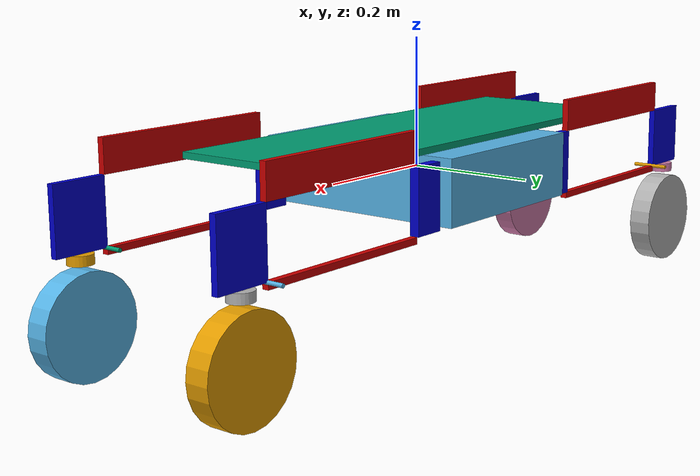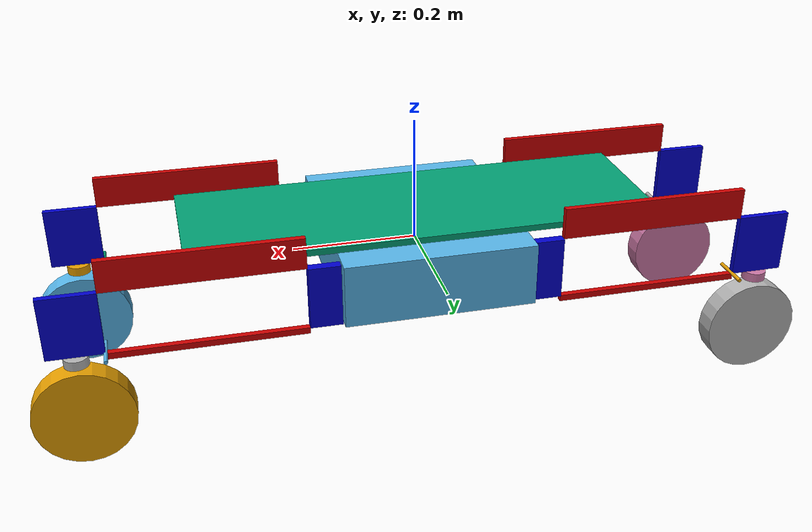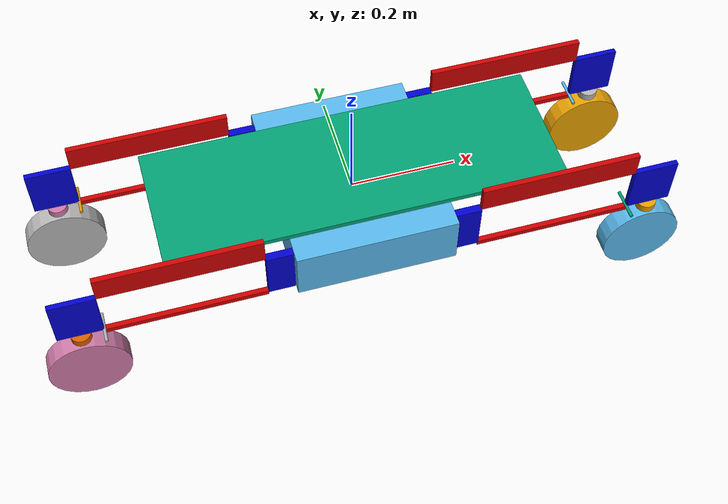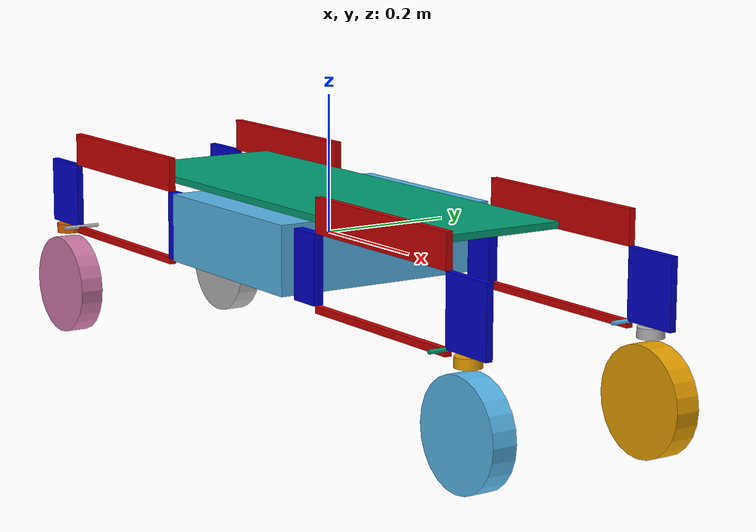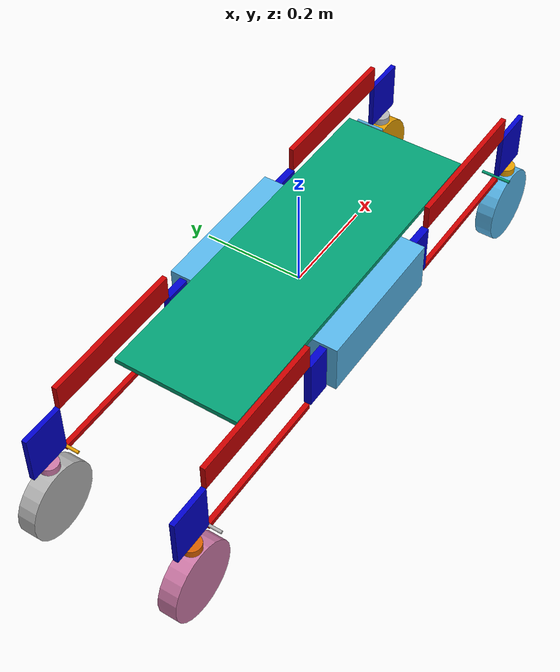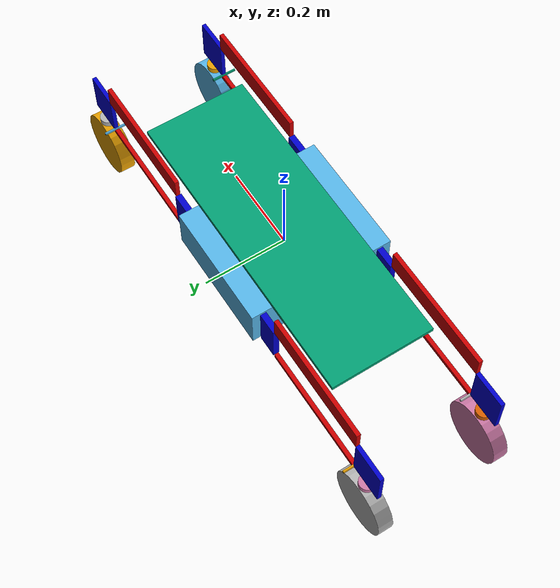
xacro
<?xml version="1.0"?>
<robot xmlns:xacro="http://www.ros.org/wiki/xacro" name="pandora">

	<!-- other files -->
	<xacro:include filename="$(find pandora_description)/materials.xacro" />
	<xacro:include filename="$(find pandora_description)/urdf/parameters.xacro" />
	<xacro:include filename="$(find pandora_description)/urdf/leg.xacro" />
	<xacro:include filename="$(find pandora_gazebo)/urdf/pandora.gazebo"/>
	<xacro:include filename="$(find pandora_gazebo)/urdf/plugins/contactWheels.gazebo"/>
	<xacro:include filename="$(find pandora_gazebo)/urdf/plugins/imu.gazebo"/>

	<!-- Used for fixing robot to Gazebo 'base_link' -->
  	<link name="dummy"/>

	<joint name="dummy__${base_link}" type="fixed">
		<origin xyz="0 0 0" rpy="0 0 0"/>
		<parent link="dummy"/>
		<child link="${base_link}"/>
	</joint>

	<!-- Base Link -->
	<link name="${base_link}">
		<visual>
			<origin xyz="0 0 0" rpy="0 0 0"/>
		  	<geometry>
				<box size="${base_link_x} ${base_link_y} ${base_link_z}"/>
		  	</geometry>
		</visual>

		<collision>
			<origin xyz="0 0 0" rpy="0 0 0"/>
			<geometry>
				<box size="${base_link_x} ${base_link_y} ${base_link_z}"/>
			</geometry>
		</collision>

		<inertial>
			<origin xyz="0 0 0" rpy="0 0 0"/>
			<mass value="${base_link_mass}"/>
			<inertia
				  ixx="${base_link_mass / 12.0 * (base_link_z*base_link_z + base_link_y*base_link_y)}" ixy="0.0" ixz="0.0"
				  iyy="${base_link_mass / 12.0 * (base_link_z*base_link_z + base_link_x*base_link_x)}" iyz="0.0"
				  izz="${base_link_mass / 12.0 * (base_link_y*base_link_y + base_link_x*base_link_x)}"/>
		</inertial>
	</link>

	<joint name="fixed" type="fixed">
		<origin xyz="0 0 0" rpy="0 0 0"/>
		<parent link="${base_link}"/>
		<child link="${base}"/>
	</joint>

	<!-- Base -->
	<link name="${base}">
		<visual>
			<origin xyz="0 0 0.055" rpy="0 0 0"/>
		  	<geometry>
				<box size="${base_x} ${base_y} ${base_z}"/>
		  	</geometry>
		</visual>

		<collision>
			<origin xyz="0 0 0.055" rpy="0 0 0"/>
			<geometry>
				<box size="${base_x} ${base_y} ${base_z}"/>
			</geometry>
		</collision>

		<inertial>
			<origin xyz="0 0 0.055" rpy="0 0 0"/>
			<mass value="${base_mass}"/>
			<inertia
				  ixx="${base_mass / 12.0 * (base_z*base_z + base_y*base_y)}" ixy="0.0" ixz="0.0"
				  iyy="${base_mass / 12.0 * (base_z*base_z + base_x*base_x)}" iyz="0.0"
				  izz="${base_mass / 12.0 * (base_y*base_y + base_x*base_x)}"/>
		</inertial>
	</link>

	<joint name="imu_joint" type="fixed">
		<origin xyz="0 0 0" rpy="0 0 0"/>
		<parent link="${base_link}"/>
		<child link="${imu_link}"/>
	</joint>

	<link name="${imu_link}">
	<inertial>
		<mass value="0.001"/>
		<origin rpy="0 0 0" xyz="0 0 0"/>
		<inertia
				  ixx="${0.001 / 12.0 * (0.001*0.001 + 0.001*0.001)}" ixy="0.0" ixz="0.0"
				  iyy="${0.001 / 12.0 * (0.001*0.001 + 0.001*0.001)}" iyz="0.0"
				  izz="${0.001 / 12.0 * (0.001*0.001 + 0.001*0.001)}"/>

	</inertial>
	<visual>
		<origin rpy="0 0 0" xyz="0 0 0"/>
		<geometry>
		<box size="0.001 0.001 0.001"/>
		</geometry>
	</visual>
	<collision>
		<origin rpy="0 0 0" xyz="0 0 0"/>
		<geometry>
		<box size=".001 .001 .001"/>
		</geometry>
	</collision>
	</link>

	<!-- legs -->
	<!-- the origin and rotz parameters defines only the leg direction (to front, to back) and side (left, right) -->
	<!-- the real leg position is defined relative to parameters width (base link and frame) -->
	<xacro:pandora_leg leg_num="1" origin_x="1" origin_y="-1" rotz="0"/>
	<xacro:wheel_contacts_config leg_num="1"/>

	<xacro:pandora_leg leg_num="2" origin_x="1" origin_y="1" rotz="0"/>
	<xacro:wheel_contacts_config leg_num="2"/>

	<xacro:pandora_leg leg_num="3" origin_x="-1" origin_y="1" rotz="${PI}"/>
	<xacro:wheel_contacts_config leg_num="3"/>

	<xacro:pandora_leg leg_num="4" origin_x="-1" origin_y="-1" rotz="${PI}"/>
	<xacro:wheel_contacts_config leg_num="4"/>
	<!-- /legs -->
</robot>

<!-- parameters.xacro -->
<robot xmlns:xacro="http://www.ros.org/wiki/xacro" name="pandora">
	<!-- constants -->
	<xacro:property name="PI" value="3.1415926535897931"/>
	<!-- /constants -->

	<!-- Base Link -->
	<xacro:property name="base_link" value="base_link" />
	<xacro:property name="base_link_mass" value="30" /> 		<!-- arbitrary value for mass -->
	<xacro:property name="base_link_x" value="0.3" /> 		<!-- "0.45"value in x axis -->
	<xacro:property name="base_link_y" value="0.35" />		<!-- value in y axis -->
	<xacro:property name="base_link_z" value="0.10" /> 	<!-- value in z axis -->
	<xacro:property name="base_link_axel_offset" value="0.02" /><!-- Space btw top of beam and the each joint -->

	<!-- Base -->
	<xacro:property name="base" value="base" />
	<xacro:property name="base_mass" value="5" /> 		<!-- arbitrary value for mass -->
	<xacro:property name="base_x" value="0.75" /> 		<!-- "0.45"value in x axis -->
	<xacro:property name="base_y" value="0.25" />		<!-- value in y axis -->
	<xacro:property name="base_z" value="0.01" /> 	<!-- value in z axis -->

	<!-- Frame -->
	<xacro:property name="frame" value="frame" />
	<xacro:property name="frame_mass" value="1.2" />			<!-- arbitrary value for mass -->
	<xacro:property name="frame_x" value="0.05" />	 		<!-- value in x axis -->
	<xacro:property name="frame_y" value="0.1" />		<!-- value in y axis -->
	<xacro:property name="frame_z" value="0.015" /> 	<!-- value in z axis -->

	<!-- Crank -->
	<xacro:property name="crank" value="crank" />
	<xacro:property name="crank_mass" value="0.72" /> 			<!-- arbitrary value for mass -->
	<xacro:property name="crank_x" value="0.3" />	 	<!-- value in x axis -->
	<xacro:property name="crank_y" value="0.05" /> 	<!-- value in y axis -->
	<xacro:property name="crank_z" value="0.01" />	<!-- value in z axis -->

	<!-- coupler -->
	<xacro:property name="coupler" value="coupler" />
	<xacro:property name="coupler_mass" value="0.16" /> 		 <!-- arbitrary value for mass -->
	<xacro:property name="coupler_x" value="0.08514" /> 	 <!-- value in y axis -->
	<xacro:property name="coupler_y" value="0.1" /> 	 <!-- value in x axis -->
	<xacro:property name="coupler_z" value="0.01" /> 	 <!-- value in z axis -->

	<!-- rocker -->
	<xacro:property name="rocker" value="rocker" />
	<xacro:property name="rocker_mass" value="0.5" /> 			<!-- arbitrary value for mass -->
	<xacro:property name="rocker_x" value="0.3" /> 		<!-- value in x axis -->
	<xacro:property name="rocker_y" value="0.01"/>	<!-- value in y axis -->
	<xacro:property name="rocker_z" value="0.01" />		<!-- value in z axis -->

	<!-- fork -->
	<xacro:property name="fork" value="fork" />
	<xacro:property name="fork_mass" value="0.12" /> <!-- arbitrary value for mass -->
	<xacro:property name="fork_radius" value="0.01875" /> <!-- value in x axis -->
	<xacro:property name="fork_lenght" value="0.014644" /> <!-- value in z axis -->
	<xacro:property name="fork_offset" value="0.01" /> <!-- Space btw top of beam and the each joint -->

	<!-- wheel -->
	<xacro:property name="wheel" value="wheel" />
	<xacro:property name="wheel_mass" value="0.35" /> <!-- arbitrary value for mass -->
	<xacro:property name="wheel_radius" value="0.077" /> <!-- value in x axis -->
	<xacro:property name="wheel_lenght" value="0.03625" /> <!-- value in z axis -->

	<!-- IMU -->
	<xacro:property name="imu_link" value="imu_link" />
</robot>

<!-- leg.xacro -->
<robot xmlns:xacro="http://www.ros.org/wiki/xacro">

<!-- macro legs -->
<xacro:macro name="pandora_leg" params="leg_num origin_x origin_y rotz">

	<!-- joint base_link_frame -->
	<joint name="joint_${base_link}_${frame}_${leg_num}" type="fixed">

		<xacro:if value="${leg_num == 1 or leg_num == 2}">
			<origin xyz="${(base_link_x / 2 + frame_x / 2)*origin_x} ${(base_link_y / 2 - frame_z / 2 - base_link_axel_offset)*origin_y} -0.006" rpy="${PI/2} ${rotz} 0"/>
		</xacro:if>
		<xacro:if value="${leg_num == 3 or leg_num == 4}">
			<origin xyz="${(base_link_x / 2 + frame_x / 2)*origin_x} ${(base_link_y / 2 - frame_z / 2 - base_link_axel_offset)*origin_y} -0.006" rpy="${-PI/2} ${rotz} 0"/>
		</xacro:if>

	    <parent link="${base_link}"/>
	    <child link="${frame}_${leg_num}"/>
  	</joint>

  	<!--frame-->
	<link name="${frame}_${leg_num}">
		<visual>
			<origin xyz="0 0 0" rpy="0 0 ${PI}"/>
		  	<geometry>
				<box size="${frame_x} ${frame_y} ${frame_z} "/>
		  	</geometry>
			<material name="Gazebo/blue">
				<color rgba="0.0 0.0 0.8 1.0"/>
			</material>
		</visual>
		<collision>
			<origin xyz="0 0 0" rpy="0 0 ${PI}"/>
		  	<geometry>
				<box size="${frame_x} ${frame_y} ${frame_z}"/>
		  	</geometry>
		</collision>
		<inertial>
			<origin xyz="0 0 0" rpy="0 0 0"/>
			<mass value="${frame_mass}"/>
			<inertia
				  ixx="${frame_mass / 12.0 * (frame_z*frame_z + frame_y*frame_y)}" ixy="0.0" ixz="0.0"
				  iyy="${frame_mass / 12.0 * (frame_z*frame_z + frame_x*frame_x)}" iyz="0.0"
				  izz="${frame_mass / 12.0 * (frame_y*frame_y + frame_x*frame_x)}"/>
		</inertial>
	</link>

	<!-- joint frame_crank -->
	<joint name="joint_${frame}_${crank}_${leg_num}" type="revolute">
		<origin xyz="${frame_x/2} ${frame_y/2} 0" rpy="0 0 0"/>
		<axis xyz="0 0 1"/>
		<limit effort="1000.0" lower="${-PI/4}" upper="${PI/4}" velocity="10"/>
		<parent link="${frame}_${leg_num}"/>
		<child link="${crank}_${leg_num}"/>
	</joint>

	<!--crank-->
	<link name="${crank}_${leg_num}">
		<visual>
			<origin xyz="${crank_x/2} ${crank_y/2} 0" rpy="0 0 0"/>
			<geometry>
				<box size="${crank_x} ${crank_y} ${crank_z} "/>
		  	</geometry>
			<material name="Gazebo/Gazebo/red">
				<color rgba="0.8 0.0 0.0 1.0"/>
			</material>
		</visual>
		<collision>
			<origin xyz="${crank_x/2} ${crank_y/2} 0" rpy="0 0 0"/>
			<geometry>
				<box size="${crank_x} ${crank_y} ${crank_z}"/>
		  	</geometry>
		</collision>
		<inertial>
			<origin xyz="${crank_x/2} ${crank_y/2} 0" rpy="0 0 0"/>

			<mass value="${crank_mass}"/>
			<inertia
				  ixx="${crank_mass / 12.0 * (crank_y*crank_y + crank_z*crank_z)}" ixy="0.0" ixz="0.0"
				  iyy="${crank_mass / 12.0 * (crank_x*crank_x + crank_z*crank_z)}" iyz="0.0"
				  izz="${crank_mass / 12.0 * (crank_x*crank_x + crank_y*crank_y)}"/>
		</inertial>
	</link>

	<!-- joint crank_coupler -->
	<joint name="joint_${crank}_${coupler}_${leg_num}" type="revolute">
		<origin xyz="${crank_x} 0 0" rpy="0 0 0"/>
		<axis xyz="0 0 1"/>
		<limit effort="1000.0" lower="${-PI}" upper="${PI}" velocity="10"/>
	    <parent link="${crank}_${leg_num}"/>
	    <child link="${coupler}_${leg_num}"/>
  	</joint>

	<!--coupler-->
	<link name="${coupler}_${leg_num}">
		<visual>
			<origin xyz="${coupler_x/2} ${-coupler_y/2} 0" rpy="0 0 0"/>
			<geometry>
				<box size="${coupler_x} ${coupler_y} ${coupler_z} "/>
		  	</geometry>
			<material name="Gazebo/blue">
				<color rgba="0.0 0.0 0.8 1.0"/>
			</material>
		</visual>
		<collision>
			<origin xyz="${coupler_x/2} ${-coupler_y/2} 0" rpy="0 0 0"/>
			<geometry>
				<box size="${coupler_x} ${coupler_y} ${coupler_z}"/>
		  	</geometry>
		</collision>
		<inertial>
			<origin xyz="${coupler_x/2} ${-coupler_y/2} 0" rpy="0 0 0"/>
			<mass value="${coupler_mass}"/>
			<inertia
				  ixx="${coupler_mass / 12.0 * (coupler_y*coupler_y + coupler_z*coupler_z)}" ixy="0.0" ixz="0.0"
				  iyy="${coupler_mass / 12.0 * (coupler_x*coupler_x + coupler_z*coupler_z)}" iyz="0.0"
				  izz="${coupler_mass / 12.0 * (coupler_x*coupler_x + coupler_y*coupler_y)}"/>
		</inertial>
	</link>

	<!-- joint frame_rocker -->
	<joint name="joint_${frame}_${rocker}_${leg_num}" type="revolute">
		<origin xyz="${frame_x/2} ${-frame_y/2} 0" rpy="0 0 0"/>
		<axis xyz="0 0 1"/>
		<limit effort="1000.0" lower="${-PI}" upper="${PI}" velocity="10"/>
	    <parent link="${frame}_${leg_num}"/>
	    <child link="${rocker}_${leg_num}"/>
  	</joint>

  	<!--rocker-->
	<link name="${rocker}_${leg_num}">
		<visual>
			<origin xyz="${rocker_x/2} ${-rocker_y/2} 0" rpy="0 0 ${PI}"/>
			<geometry>
				<box size="${rocker_x} ${rocker_y} ${rocker_z}"/>
		  	</geometry>
			<material name="Gazebo/red">
				<color rgba="0.8 0.0 0.0 1.0"/>
			</material>
		</visual>
		<collision>
			<origin xyz="${rocker_x/2} ${-rocker_y/2} 0" rpy="0 0 ${PI}"/>
			<geometry>
				<box size="${rocker_x} ${rocker_y} ${rocker_z}"/>
		  	</geometry>
		</collision>
		<inertial>
			<origin xyz="${rocker_x/2} ${-rocker_y/2} 0" rpy="0 0 ${PI}"/>
			<mass value="${rocker_mass}"/>
			<inertia
				  ixx="${rocker_mass / 12.0 * (rocker_y*rocker_y + rocker_z*rocker_z)}" ixy="0.0" ixz="0.0"
				  iyy="${rocker_mass / 12.0 * (rocker_x*rocker_x + rocker_z*rocker_z)}" iyz="0.0"
				  izz="${rocker_mass / 12.0 * (rocker_x*rocker_x + rocker_y*rocker_y)}"/>
		</inertial>
	</link>

	<!-- joint coupler_fork -->
	<joint name="${coupler}_${fork}_${leg_num}" type="fixed">
		<origin xyz="${coupler_x/2} ${-coupler_y - fork_lenght/2} 0" rpy="${PI/2} 0 0"/>

	    <parent link="${coupler}_${leg_num}"/>
	    <child link="${fork}_${leg_num}"/>
  	</joint>

  	<!--fork-->
	<link name="${fork}_${leg_num}">
		<visual>
			<geometry>
				<cylinder radius="${fork_radius}" length="${fork_lenght}"/>
		  	</geometry>
		</visual>
		<collision>
			<geometry>
				<cylinder radius="${fork_radius}" length="${fork_lenght}"/>
		  	</geometry>
		</collision>
		<inertial>
			<mass value="${fork_mass}"/>
			<inertia
				  ixx="${fork_mass / 4 * (fork_radius*fork_radius) + fork_mass / 12 * (fork_lenght*fork_lenght)/4}" ixy="0.0" ixz="0.0"
				  iyy="${fork_mass / 4 * (fork_radius*fork_radius) + fork_mass / 12 * (fork_lenght*fork_lenght)/4}" iyz="0.0"
				  izz="${fork_mass / 2 * (fork_radius*fork_radius)}"/>
		</inertial>
	</link>

	<!-- joint fork_wheel -->
	<joint name="joint_${fork}_${wheel}_${leg_num}" type="continuous">
		<origin xyz="0 0 ${wheel_radius + 0.015}" rpy="${PI/2} 0 0"/>

		<xacro:if value="${leg_num == 1 or leg_num == 2}">
			<axis xyz="0 0 1"/>
		</xacro:if>
		<xacro:if value="${leg_num == 3 or leg_num == 4}">
			<axis xyz="0 0 -1"/>
		</xacro:if>
		<limit effort="350" velocity="20.0"/>

	    <parent link="${fork}_${leg_num}"/>
	    <child link="${wheel}_${leg_num}"/>
  	</joint>

  	<!--wheel-->
	<link name="${wheel}_${leg_num}">
		<visual>
			<origin xyz="0 0 0" rpy="0 0 0"/>
			<geometry>
				 <cylinder radius="${wheel_radius}" length="${wheel_lenght}"/>
			</geometry>
		</visual>
		<collision>
			<origin xyz="0 0 0" rpy="0 0 0"/>
			<max_contacts>5</max_contacts>
			<geometry>
				<cylinder radius="${wheel_radius}" length="${wheel_lenght}"/>
		  	</geometry>
		</collision>
		<inertial>
		<origin xyz="0 0 0" rpy="0 0 0"/>
		<mass value="${wheel_mass}"/>
		<inertia
			ixx="${((wheel_radius*wheel_radius) * wheel_mass / 4) + ((wheel_lenght*wheel_lenght)/4) * wheel_mass / 12}" ixy="0.0" ixz="0.0"
			iyy="${((wheel_radius*wheel_radius) * wheel_mass / 4) + ((wheel_lenght*wheel_lenght)/4) * wheel_mass / 12}" iyz="0.0"
			izz="${((wheel_radius*wheel_radius) * wheel_mass / 2)}"/>
		</inertial>
	</link>

	 <!-- 4 bar closing joint -->
	<!-- joint_coupler_dummy_link -->
	<joint name="joint_${coupler}_dummy_link_${leg_num}" type="revolute">
		<origin xyz="0 -${coupler_y} 0" rpy="0 0 0"/>
		<axis xyz="0 0 1"/>
		<limit effort="1000.0" lower="${-PI}" upper="${PI}" velocity="10"/>
		<parent link="${coupler}_${leg_num}"/>
		<child link="dummy_link_${leg_num}"/>
	  </joint>

	<!-- create rotatable dummy link at joint_coupler_dummy_link position on coupler -->
    <link name="dummy_link_${leg_num}">
		<visual>
			<origin xyz="0 0 0" rpy="0 0 0"/>
			<geometry>
				<cylinder radius="0.003" length="0.06"/>
			</geometry>
		</visual>

		<inertial>
			<origin xyz="0 0 0" rpy="0 0 0"/>
			<mass value="0.1"/>
			<inertia ixx="5.25e-5" ixy="0" ixz="0" iyy="5.25e-5" iyz="0" izz="4.50e-5"/>
		</inertial>
	</link>

	<!-- create a fixed joint btw the dummy link and rocker to close de 4 bar -->
	<gazebo>
		<plugin filename="gz-sim-detachable-joint-system" name="gz::sim::systems::DetachableJoint">
			<parent_link>${rocker}_${leg_num}</parent_link>
			<child_model>pandora</child_model>
			<child_link>dummy_link_${leg_num}</child_link>
			<attach_topic>/loop_leg${leg_num}/attach</attach_topic>
			<detach_topic>/loop_leg${leg_num}/detach</detach_topic>
      		<output_topic>loop_leg${leg_num}/state</output_topic>

		</plugin>
	</gazebo>

	<ros2_control name="pandora_leg_${leg_num}" type="system">
		<hardware>
			<plugin>gz_ros2_control/GazeboSimSystem</plugin>
		</hardware>
		<joint name="joint_${frame}_${crank}_${leg_num}">
			<command_interface name="effort"/>
			<state_interface name="position"/>
			<state_interface name="velocity"/>
			<state_interface name="effort"/>
		</joint>
		<joint name="joint_${crank}_${coupler}_${leg_num}">
			<state_interface name="position"/>
			<state_interface name="velocity"/>
		</joint>
		<joint name="joint_${frame}_${rocker}_${leg_num}">
			<state_interface name="position"/>
			<state_interface name="velocity"/>
		</joint>
		<joint name="joint_${coupler}_dummy_link_${leg_num}">
			<state_interface name="position"/>
			<state_interface name="velocity"/>
		</joint>
		<joint name="joint_${fork}_${wheel}_${leg_num}">
			<command_interface name="velocity"/>
			<state_interface name="position"/>
			<state_interface name="velocity"/>
		</joint>
	</ros2_control>

	<gazebo reference="my_box_link">
		<material>Gazebo/Gazebo/blue</material>
		<material>Gazebo/Gazebo/red</material>
	</gazebo>

</xacro:macro>
</robot>
